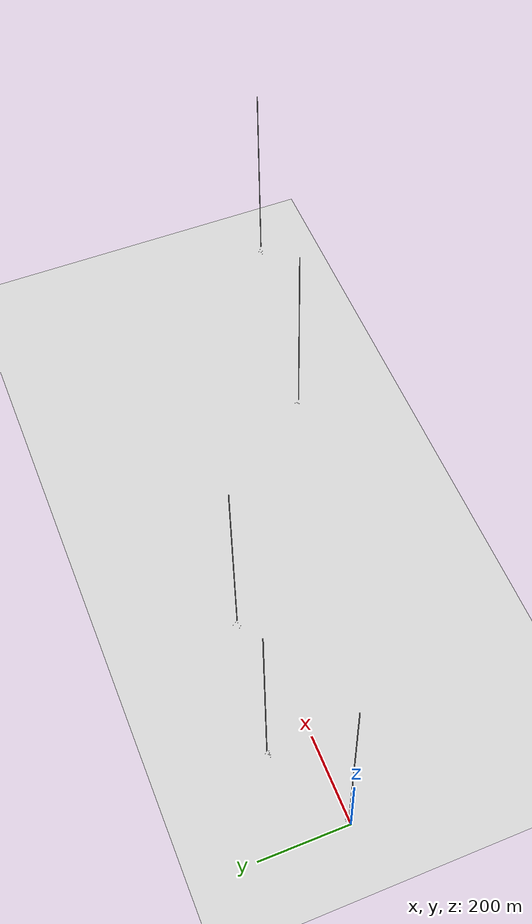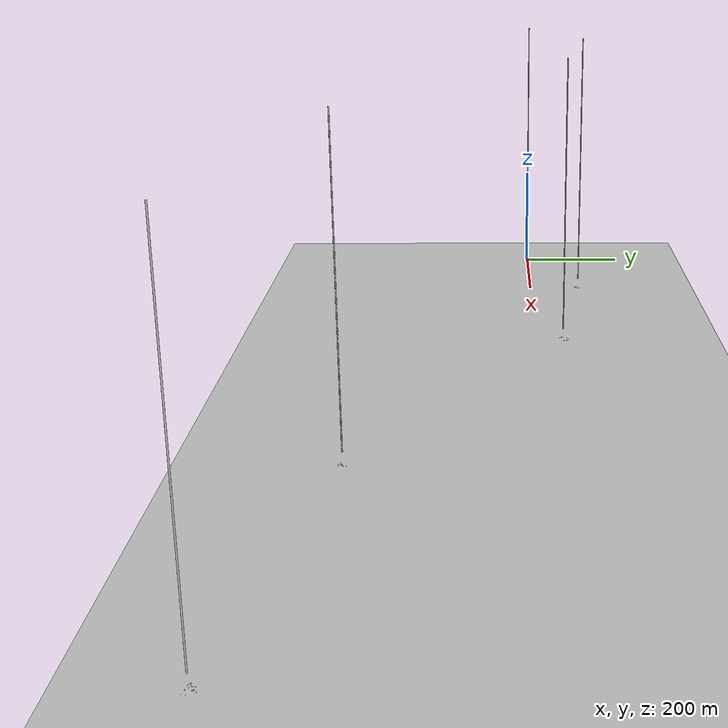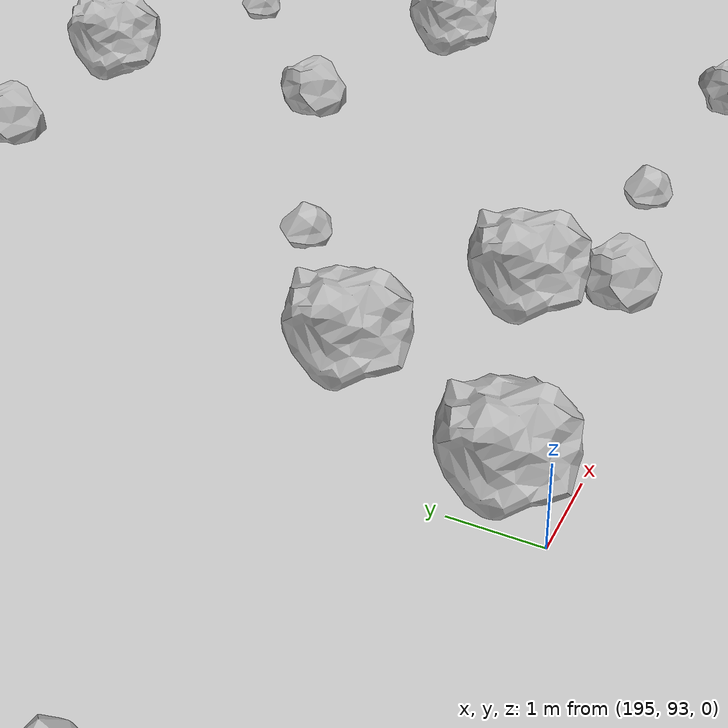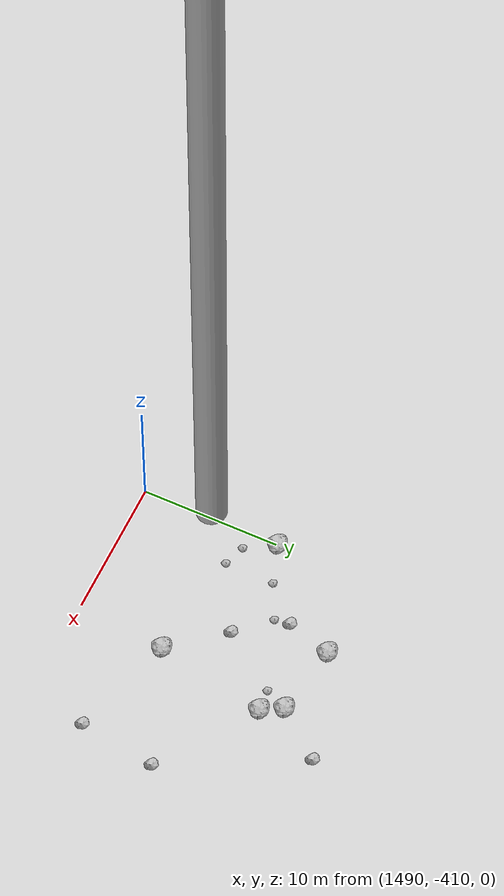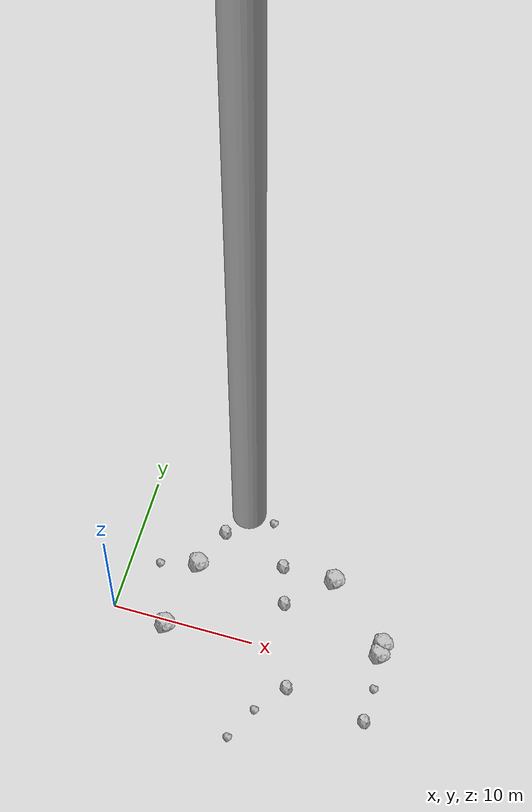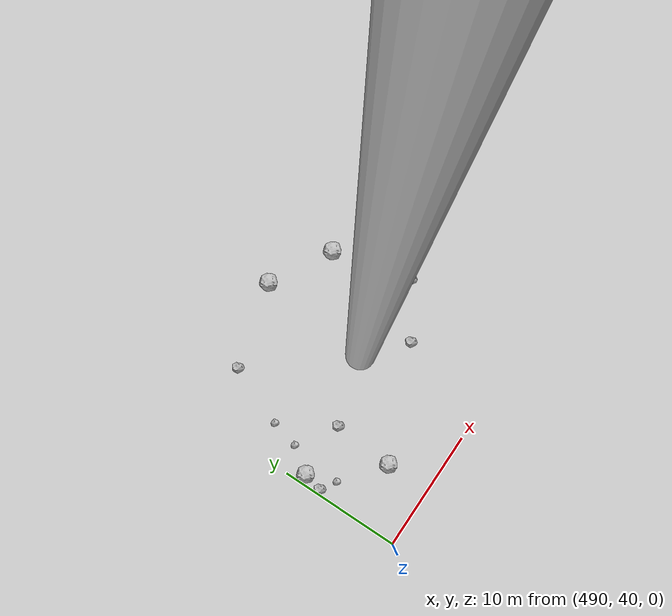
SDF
<?xml version="1.0" ?>
<sdf version="1.6">
  <world name="default">

    <include>
      <uri>model://custom_ground</uri>
    </include>

    <include>
      <uri>model://sun</uri>
    </include>

    <spherical_coordinates>
      <surface_model>EARTH_WGS84</surface_model>
      <latitude_deg>38.161479</latitude_deg>
      <longitude_deg>-122.454630</longitude_deg>
      <elevation>488.0</elevation>
      <heading_deg>90</heading_deg>
    </spherical_coordinates>

    <model name="rock1_0_0">
      <include>
        <uri>model://rock1</uri>
        <pose>18.771142130191777 1.4830486392309652 0.5 0 0 0</pose>
      </include>
    </model>
    <model name="rock1_0_1">
      <include>
        <uri>model://rock1</uri>
        <pose>18.80252979869878 2.2893723799263466 0.5 0 0 0</pose>
      </include>
    </model>
    <model name="rock1_0_2">
      <include>
        <uri>model://rock1</uri>
        <pose>4.733655919931237 4.60981662801826 0.5 0 0 0</pose>
      </include>
    </model>
    <model name="rock1_0_3">
      <include>
        <uri>model://rock1</uri>
        <pose>3.8843892182930118 -0.45241529334594865 0.5 0 0 0</pose>
      </include>
    </model>
    <model name="rock1_0_4">
      <include>
        <uri>model://rock1</uri>
        <pose>14.322882761616933 6.032580758103595 0.5 0 0 0</pose>
      </include>
    </model>
    <model name="rock2_0_0">
      <include>
        <uri>model://rock2</uri>
        <pose>11.383121237311487 3.428286811342325 0.3 0 0 0</pose>
      </include>
    </model>
    <model name="rock2_0_1">
      <include>
        <uri>model://rock2</uri>
        <pose>18.961694484861077 -3.4297760860508797 0.3 0 0 0</pose>
      </include>
    </model>
    <model name="rock2_0_2">
      <include>
        <uri>model://rock2</uri>
        <pose>13.251575363352341 -2.560825344447828 0.3 0 0 0</pose>
      </include>
    </model>
    <model name="rock2_0_3">
      <include>
        <uri>model://rock2</uri>
        <pose>5.8372252335028225 7.565731777944997 0.3 0 0 0</pose>
      </include>
    </model>
    <model name="rock2_0_4">
      <include>
        <uri>model://rock2</uri>
        <pose>10.529353066305037 6.128776373188746 0.3 0 0 0</pose>
      </include>
    </model>
    <model name="rock3_0_0">
      <include>
        <uri>model://rock3</uri>
        <pose>2.0752982767493178 3.9765441539535367 0.2 0 0 0</pose>
      </include>
    </model>
    <model name="rock3_0_1">
      <include>
        <uri>model://rock3</uri>
        <pose>11.578265597039268 -4.719820598335507 0.2 0 0 0</pose>
      </include>
    </model>
    <model name="rock3_0_2">
      <include>
        <uri>model://rock3</uri>
        <pose>10.38346635242589 -7.104345792458826 0.2 0 0 0</pose>
      </include>
    </model>
    <model name="rock3_0_3">
      <include>
        <uri>model://rock3</uri>
        <pose>18.991823125822854 -0.9972047527150849 0.2 0 0 0</pose>
      </include>
    </model>
    <model name="rock3_0_4">
      <include>
        <uri>model://rock3</uri>
        <pose>8.943507771931403 9.197157067837065 0.2 0 0 0</pose>
      </include>
    </model>
    <model name="rock1_1_0">
      <include>
        <uri>model://rock1</uri>
        <pose>196.90785235419048 95.98399956458498 0.5 0 0 0</pose>
      </include>
    </model>
    <model name="rock1_1_1">
      <include>
        <uri>model://rock1</uri>
        <pose>205.750565715203 98.64174129908746 0.5 0 0 0</pose>
      </include>
    </model>
    <model name="rock1_1_2">
      <include>
        <uri>model://rock1</uri>
        <pose>198.92151754953892 94.69527267986855 0.5 0 0 0</pose>
      </include>
    </model>
    <model name="rock1_1_3">
      <include>
        <uri>model://rock1</uri>
        <pose>195.76090699567203 93.69449561868493 0.5 0 0 0</pose>
      </include>
    </model>
    <model name="rock1_1_4">
      <include>
        <uri>model://rock1</uri>
        <pose>202.57441887246932 103.0680715826143 0.5 0 0 0</pose>
      </include>
    </model>
    <model name="rock2_1_0">
      <include>
        <uri>model://rock2</uri>
        <pose>199.36462446054128 93.76037667460365 0.3 0 0 0</pose>
      </include>
    </model>
    <model name="rock2_1_1">
      <include>
        <uri>model://rock2</uri>
        <pose>202.48742525222178 99.53205940643541 0.3 0 0 0</pose>
      </include>
    </model>
    <model name="rock2_1_2">
      <include>
        <uri>model://rock2</uri>
        <pose>199.80393509117894 103.03608750541424 0.3 0 0 0</pose>
      </include>
    </model>
    <model name="rock2_1_3">
      <include>
        <uri>model://rock2</uri>
        <pose>195.11592034889972 100.40066126533698 0.3 0 0 0</pose>
      </include>
    </model>
    <model name="rock2_1_4">
      <include>
        <uri>model://rock2</uri>
        <pose>205.16257626441026 93.84857787851571 0.3 0 0 0</pose>
      </include>
    </model>
    <model name="rock3_1_0">
      <include>
        <uri>model://rock3</uri>
        <pose>198.94675298554574 97.66230223222179 0.2 0 0 0</pose>
      </include>
    </model>
    <model name="rock3_1_1">
      <include>
        <uri>model://rock3</uri>
        <pose>205.43270185550347 102.13742791081933 0.2 0 0 0</pose>
      </include>
    </model>
    <model name="rock3_1_2">
      <include>
        <uri>model://rock3</uri>
        <pose>209.7794614879918 98.03899276582959 0.2 0 0 0</pose>
      </include>
    </model>
    <model name="rock3_1_3">
      <include>
        <uri>model://rock3</uri>
        <pose>191.07136817343283 95.55622034359874 0.2 0 0 0</pose>
      </include>
    </model>
    <model name="rock3_1_4">
      <include>
        <uri>model://rock3</uri>
        <pose>201.74806298993607 94.09234779543877 0.2 0 0 0</pose>
      </include>
    </model>
    <model name="rock1_2_0">
      <include>
        <uri>model://rock1</uri>
        <pose>501.8014691596 59.573105811867435 0.5 0 0 0</pose>
      </include>
    </model>
    <model name="rock1_2_1">
      <include>
        <uri>model://rock1</uri>
        <pose>506.69061547031725 56.76602343723128 0.5 0 0 0</pose>
      </include>
    </model>
    <model name="rock1_2_2">
      <include>
        <uri>model://rock1</uri>
        <pose>506.67628652469136 51.56327638669672 0.5 0 0 0</pose>
      </include>
    </model>
    <model name="rock1_2_3">
      <include>
        <uri>model://rock1</uri>
        <pose>490.84697704681616 48.724958941179445 0.5 0 0 0</pose>
      </include>
    </model>
    <model name="rock1_2_4">
      <include>
        <uri>model://rock1</uri>
        <pose>495.10035603108616 43.74016884289306 0.5 0 0 0</pose>
      </include>
    </model>
    <model name="rock2_2_0">
      <include>
        <uri>model://rock2</uri>
        <pose>504.1027909008532 47.59148061751537 0.3 0 0 0</pose>
      </include>
    </model>
    <model name="rock2_2_1">
      <include>
        <uri>model://rock2</uri>
        <pose>508.264085748092 50.33291606566805 0.3 0 0 0</pose>
      </include>
    </model>
    <model name="rock2_2_2">
      <include>
        <uri>model://rock2</uri>
        <pose>495.3961886338028 48.71010521471922 0.3 0 0 0</pose>
      </include>
    </model>
    <model name="rock2_2_3">
      <include>
        <uri>model://rock2</uri>
        <pose>490.44351442290105 47.16324896099487 0.3 0 0 0</pose>
      </include>
    </model>
    <model name="rock2_2_4">
      <include>
        <uri>model://rock2</uri>
        <pose>494.8215807398796 57.84923753364898 0.3 0 0 0</pose>
      </include>
    </model>
    <model name="rock3_2_0">
      <include>
        <uri>model://rock3</uri>
        <pose>491.66180458566464 46.334369981697364 0.2 0 0 0</pose>
      </include>
    </model>
    <model name="rock3_2_1">
      <include>
        <uri>model://rock3</uri>
        <pose>509.6890303435536 51.113080578893644 0.2 0 0 0</pose>
      </include>
    </model>
    <model name="rock3_2_2">
      <include>
        <uri>model://rock3</uri>
        <pose>508.8035138558305 51.74632023479446 0.2 0 0 0</pose>
      </include>
    </model>
    <model name="rock3_2_3">
      <include>
        <uri>model://rock3</uri>
        <pose>492.7925265885989 52.968617577322775 0.2 0 0 0</pose>
      </include>
    </model>
    <model name="rock3_2_4">
      <include>
        <uri>model://rock3</uri>
        <pose>492.2195539780215 50.69231711943876 0.2 0 0 0</pose>
      </include>
    </model>
    <model name="rock1_3_0">
      <include>
        <uri>model://rock1</uri>
        <pose>1004.3482957928067 -300.0739381466346 0.5 0 0 0</pose>
      </include>
    </model>
    <model name="rock1_3_1">
      <include>
        <uri>model://rock1</uri>
        <pose>1001.0575135346563 -301.9518276100525 0.5 0 0 0</pose>
      </include>
    </model>
    <model name="rock1_3_2">
      <include>
        <uri>model://rock1</uri>
        <pose>1006.5957420232572 -293.8928506070242 0.5 0 0 0</pose>
      </include>
    </model>
    <model name="rock1_3_3">
      <include>
        <uri>model://rock1</uri>
        <pose>1006.7197911456452 -298.2000600248546 0.5 0 0 0</pose>
      </include>
    </model>
    <model name="rock1_3_4">
      <include>
        <uri>model://rock1</uri>
        <pose>1001.0591776924157 -302.2228879573032 0.5 0 0 0</pose>
      </include>
    </model>
    <model name="rock2_3_0">
      <include>
        <uri>model://rock2</uri>
        <pose>1004.2568465828281 -300.43146538289244 0.3 0 0 0</pose>
      </include>
    </model>
    <model name="rock2_3_1">
      <include>
        <uri>model://rock2</uri>
        <pose>1003.8266428737917 -290.9622811625789 0.3 0 0 0</pose>
      </include>
    </model>
    <model name="rock2_3_2">
      <include>
        <uri>model://rock2</uri>
        <pose>1003.6457458765549 -302.51848391922533 0.3 0 0 0</pose>
      </include>
    </model>
    <model name="rock2_3_3">
      <include>
        <uri>model://rock2</uri>
        <pose>1002.9512292193399 -305.82641085267863 0.3 0 0 0</pose>
      </include>
    </model>
    <model name="rock2_3_4">
      <include>
        <uri>model://rock2</uri>
        <pose>1000.5452404248381 -306.03504353071753 0.3 0 0 0</pose>
      </include>
    </model>
    <model name="rock3_3_0">
      <include>
        <uri>model://rock3</uri>
        <pose>998.0786577023005 -299.01192255535733 0.2 0 0 0</pose>
      </include>
    </model>
    <model name="rock3_3_1">
      <include>
        <uri>model://rock3</uri>
        <pose>998.5106116565153 -304.78491446515346 0.2 0 0 0</pose>
      </include>
    </model>
    <model name="rock3_3_2">
      <include>
        <uri>model://rock3</uri>
        <pose>994.952533602608 -303.11654380195347 0.2 0 0 0</pose>
      </include>
    </model>
    <model name="rock3_3_3">
      <include>
        <uri>model://rock3</uri>
        <pose>1007.3920028624069 -305.7459010871776 0.2 0 0 0</pose>
      </include>
    </model>
    <model name="rock3_3_4">
      <include>
        <uri>model://rock3</uri>
        <pose>1004.6202461021205 -306.28960527363796 0.2 0 0 0</pose>
      </include>
    </model>
    <model name="rock1_4_0">
      <include>
        <uri>model://rock1</uri>
        <pose>1502.238049843446 -395.6121000493203 0.5 0 0 0</pose>
      </include>
    </model>
    <model name="rock1_4_1">
      <include>
        <uri>model://rock1</uri>
        <pose>1496.3770501985466 -393.26393030094835 0.5 0 0 0</pose>
      </include>
    </model>
    <model name="rock1_4_2">
      <include>
        <uri>model://rock1</uri>
        <pose>1500.8104375729372 -403.52744474078185 0.5 0 0 0</pose>
      </include>
    </model>
    <model name="rock1_4_3">
      <include>
        <uri>model://rock1</uri>
        <pose>1501.4230406336064 -394.1312360491423 0.5 0 0 0</pose>
      </include>
    </model>
    <model name="rock1_4_4">
      <include>
        <uri>model://rock1</uri>
        <pose>1490.2103181028335 -399.82619639544276 0.5 0 0 0</pose>
      </include>
    </model>
    <model name="rock2_4_0">
      <include>
        <uri>model://rock2</uri>
        <pose>1508.8543442856007 -400.33830662762557 0.3 0 0 0</pose>
      </include>
    </model>
    <model name="rock2_4_1">
      <include>
        <uri>model://rock2</uri>
        <pose>1508.0902926442889 -405.8367461196411 0.3 0 0 0</pose>
      </include>
    </model>
    <model name="rock2_4_2">
      <include>
        <uri>model://rock2</uri>
        <pose>1497.6067354617817 -399.8135713115672 0.3 0 0 0</pose>
      </include>
    </model>
    <model name="rock2_4_3">
      <include>
        <uri>model://rock2</uri>
        <pose>1503.972132161346 -390.839785717464 0.3 0 0 0</pose>
      </include>
    </model>
    <model name="rock2_4_4">
      <include>
        <uri>model://rock2</uri>
        <pose>1495.3405549940344 -396.46366906355576 0.3 0 0 0</pose>
      </include>
    </model>
    <model name="rock3_4_0">
      <include>
        <uri>model://rock3</uri>
        <pose>1491.3106537737401 -401.9346119623064 0.2 0 0 0</pose>
      </include>
    </model>
    <model name="rock3_4_1">
      <include>
        <uri>model://rock3</uri>
        <pose>1492.9355554262095 -398.89100308169265 0.2 0 0 0</pose>
      </include>
    </model>
    <model name="rock3_4_2">
      <include>
        <uri>model://rock3</uri>
        <pose>1495.4733790587368 -397.6134845559186 0.2 0 0 0</pose>
      </include>
    </model>
    <model name="rock3_4_3">
      <include>
        <uri>model://rock3</uri>
        <pose>1500.5777755352826 -395.74919209596777 0.2 0 0 0</pose>
      </include>
    </model>
    <model name="rock3_4_4">
      <include>
        <uri>model://rock3</uri>
        <pose>1492.8871899587373 -402.47256939959044 0.2 0 0 0</pose>
      </include>
    </model>

    <model name="cylinder_1">
      <static>true</static>
      <link name="link">
        <visual name="visual">
          <geometry>
            <cylinder>
              <radius>1</radius>
              <length>500</length>
            </cylinder>
          </geometry>
        </visual>
      </link>
      <pose>10 0 270 0 0 0</pose>
    </model>

    <model name="cylinder_2">
      <static>true</static>
      <link name="link">
        <visual name="visual">
          <geometry>
            <cylinder>
              <radius>1</radius>
              <length>500</length>
            </cylinder>
          </geometry>
        </visual>
      </link>
      <pose>200 100 270 0 0 0</pose>
    </model>

    <model name="cylinder_3">
      <static>true</static>
      <link name="link">
        <visual name="visual">
          <geometry>
            <cylinder>
              <radius>1</radius>
              <length>500</length>
            </cylinder>
          </geometry>
        </visual>
      </link>
      <pose>500 50 270 0 0 0</pose>
    </model>

    <model name="cylinder_4">
      <static>true</static>
      <link name="link">
        <visual name="visual">
          <geometry>
            <cylinder>
              <radius>1</radius>
              <length>500</length>
            </cylinder>
          </geometry>
        </visual>
      </link>
      <pose>1000 -300 270 0 0 0</pose>
    </model>

    <model name="cylinder_5">
      <static>true</static>
      <link name="link">
        <visual name="visual">
          <geometry>
            <cylinder>
              <radius>1</radius>
              <length>500</length>
            </cylinder>
          </geometry>
        </visual>
      </link>
      <pose>1500 -400 270 0 0 0</pose>
    </model>

  </world>
</sdf>

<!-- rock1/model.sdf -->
<sdf version="1.6">
  <model name="rock1">
    <static>true</static> <!-- Set to true if the model should not move -->
    <pose>0 0 0 0 0 0</pose>

    <!--z offset is 0.5 for full scale-->

    <link name="link">
      <collision name="rock1_collision">
        <geometry>
          <mesh>
            <uri>model://meshes/rock1.dae</uri>
          </mesh>
        </geometry>
      </collision>
      <visual name="rock1_visual">
        <geometry>
          <mesh>
            <uri>model://meshes/rock1.dae</uri>
          </mesh>
        </geometry>
        <material>
          <script>
            <uri>model://materials/scripts/sand_pebbles.material</uri>
            <name>custom_ground/Image</name>
          </script>
        </material>
      </visual>
    </link>
  </model>
</sdf>

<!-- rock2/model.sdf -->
<sdf version="1.6">
  <model name="rock2">
    <static>true</static> <!-- Set to true if the model should not move -->
    <pose>0 0 0 0 0 0</pose>

    <!--z offset is 0.3 for full scale-->

    <link name="link">
      <collision name="rock2_collision">
        <geometry>
          <mesh>
            <uri>model://meshes/rock2.dae</uri>
          </mesh>
        </geometry>
      </collision>
      <visual name="rock2_visual">
        <geometry>
          <mesh>
            <uri>model://meshes/rock2.dae</uri>
          </mesh>
        </geometry>
        <material>
          <script>
            <uri>model://materials/scripts/sand_pebbles.material</uri>
            <name>custom_ground/Image</name>
          </script>
        </material>
      </visual>
    </link>
  </model>
</sdf>

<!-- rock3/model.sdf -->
<sdf version="1.6">
  <model name="rock3">
    <static>true</static> <!-- Set to true if the model should not move -->
    <pose>0 0 0 0 0 0</pose>

    <!--z offset is 0.2 for full scale-->

    <link name="link">
      <collision name="rock3_collision">
        <geometry>
          <mesh>
            <uri>model://meshes/rock3.dae</uri>
          </mesh>
        </geometry>
      </collision>
      <visual name="rock3_visual">
        <geometry>
          <mesh>
            <uri>model://meshes/rock3.dae</uri>
          </mesh>
        </geometry>
        <material>
          <script>
            <uri>model://materials/scripts/sand_pebbles.material</uri>
            <name>custom_ground/Image</name>
          </script>
        </material>
      </visual>
    </link>
  </model>
</sdf>

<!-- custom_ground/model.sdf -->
<sdf version="1.6">
  <model name="custom_ground">
    <static>true</static> <!-- Ground is static and immovable -->
    <link name="ground_link">
      <pose>240 0 0 0 0 0</pose> <!-- Position and orientation relative to the world -->
      <!-- Visual Representation -->
      <visual name="ground_visual">
        <geometry>
          <plane>
            <normal>0 0 1</normal> <!-- Upward facing plane -->
            <size>500 500</size> <!-- Size of the plane -->
          </plane>
        </geometry>
        <material>
          <script>
            <uri>model://materials/scripts/sand_pebbles.material</uri>
            <name>custom_ground/Image</name>
          </script>
        </material>
      </visual>

      <!-- Collision Representation -->
      <collision name="ground_collision">
        <geometry>
          <plane>
            <normal>0 0 1</normal>
            <size>100 100</size>
          </plane>
        </geometry>
      </collision>

    </link>
  </model>
</sdf>
